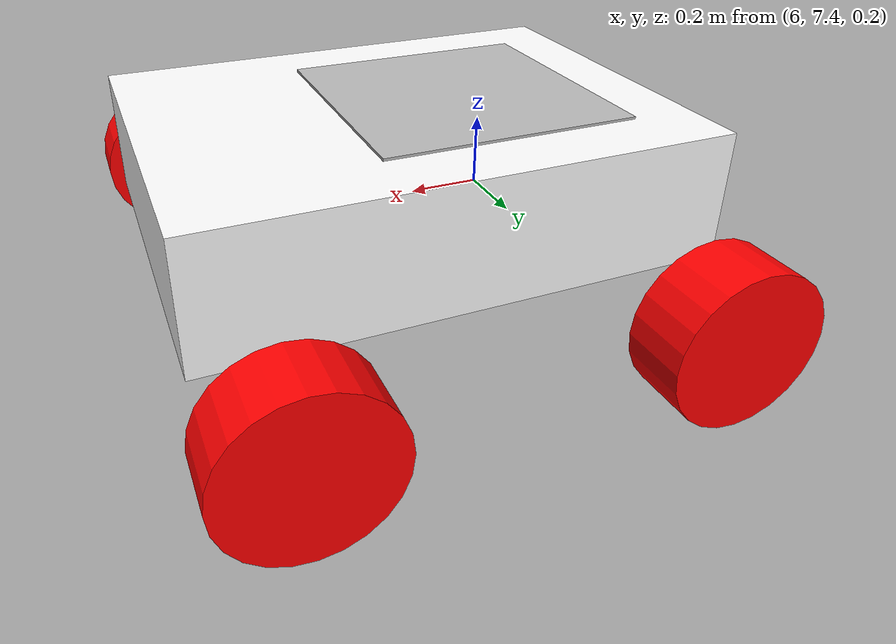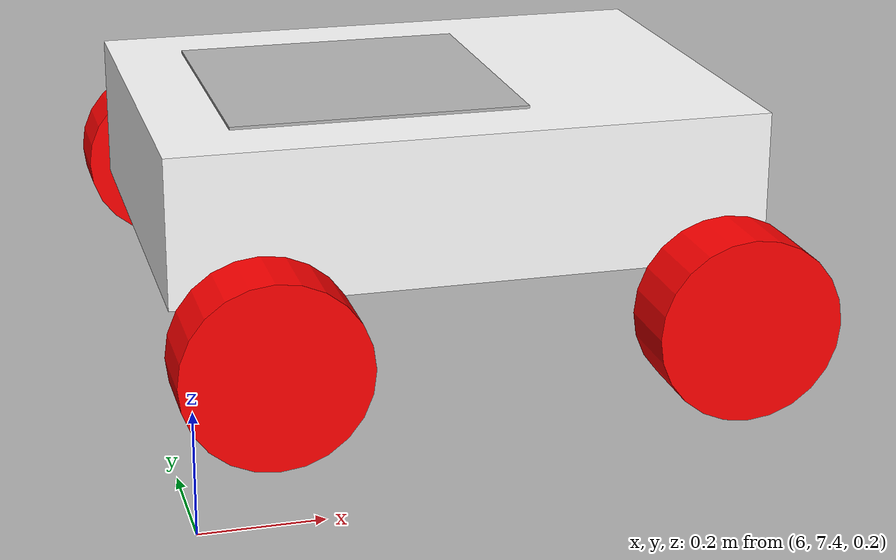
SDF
<?xml version="1.0" ?>
<sdf version="1.9">
  <model name="vehicle_blue" canonical_link="chassis">
    <pose>6.0 8.0 0.2 0 0 0</pose>

    <plugin filename="gz-sim-diff-drive-system" name="gz::sim::systems::DiffDrive">
      <left_joint>rear_left_wheel_joint</left_joint>
      <right_joint>rear_right_wheel_joint</right_joint>
      <wheel_separation>1.125</wheel_separation>
      <wheel_radius>0.15</wheel_radius>
      <odom_publish_frequency>1</odom_publish_frequency>
      <topic>cmd_vel</topic>
      <odom_topic>/odom</odom_topic>
    </plugin>
    <!-- Move Forward (W) -->
<plugin filename="gz-sim-triggered-publisher-system"
        name="gz::sim::systems::TriggeredPublisher">
    <input type="gz.msgs.Int32" topic="/keyboard/keypress">
        <match field="data">87</match>
    </input>
    <output type="gz.msgs.Twist" topic="/cmd_vel">
        linear: {x: 1.2}, angular: {z: 0.0}
    </output>
</plugin>

<!-- Move Backward (S) -->
<plugin filename="gz-sim-triggered-publisher-system"
        name="gz::sim::systems::TriggeredPublisher">
    <input type="gz.msgs.Int32" topic="/keyboard/keypress">
        <match field="data">83</match>
    </input>
    <output type="gz.msgs.Twist" topic="/cmd_vel">
        linear: {x: -1.2}, angular: {z: 0.0}
    </output>
</plugin>

<!-- Turn Left (A) -->
<plugin filename="gz-sim-triggered-publisher-system"
        name="gz::sim::systems::TriggeredPublisher">
    <input type="gz.msgs.Int32" topic="/keyboard/keypress">
        <match field="data">65</match>
    </input>
    <output type="gz.msgs.Twist" topic="/cmd_vel">
        linear: {x: 1.2}, angular: {z: -0.5}
    </output>
</plugin>

<!-- Turn Right (D) -->
<plugin filename="gz-sim-triggered-publisher-system"
        name="gz::sim::systems::TriggeredPublisher">
    <input type="gz.msgs.Int32" topic="/keyboard/keypress">
        <match field="data">68</match>
    </input>
    <output type="gz.msgs.Twist" topic="/cmd_vel">
        linear: {x: 1.2}, angular: {z: 0.5}
    </output>
</plugin>

<!-- Stop (X) -->
<plugin filename="gz-sim-triggered-publisher-system"
        name="gz::sim::systems::TriggeredPublisher">
    <input type="gz.msgs.Int32" topic="/keyboard/keypress">
        <match field="data">88</match>
    </input>
    <output type="gz.msgs.Twist" topic="/cmd_vel">
        linear: {x: 0.0}, angular: {z: 0.0}
    </output>
</plugin>
    <pose relative_to="__model__">0 0 0 0 0 0</pose>

    <link name="chassis">
      <pose relative_to="__model__">0.5 0 0.4 0 0 0</pose>
      <inertial>
        <mass>1.14395</mass>
        <inertia>
          <ixx>0.095329</ixx>
          <ixy>0</ixy>
          <ixz>0</ixz>
          <iyy>0.381317</iyy>
          <iyz>0</iyz>
          <izz>0.476646</izz>
        </inertia>
      </inertial>
      <visual name="visual">
        <geometry>
          <box>
            <size>1.0 0.75 0.25</size>
          </box>
        </geometry>
        <material>
          <ambient>1.0 1.0 1.0 1</ambient>
          <diffuse>1.0 1.0 1.0 1</diffuse>
          <specular>1.0 1.0 1.0 1</specular>
        </material>
      </visual>
      <collision name="collision">
        <geometry>
          <box>
            <size>1.0 0.75 0.25</size>
          </box>
        </geometry>
      </collision>
    </link>

    <link name="wheel_rear_right">
      <pose relative_to="chassis">-0.375 0.5625 -0.15 -1.5707 0 0</pose>
      <inertial>
        <mass>1</mass>
        <inertia>
          <ixx>0.043333</ixx>
          <ixy>0</ixy>
          <ixz>0</ixz>
          <iyy>0.043333</iyy>
          <iyz>0</iyz>
          <izz>0.08</izz>
        </inertia>
      </inertial>
      <visual name="visual">
        <geometry>
          <cylinder>
            <radius>0.15</radius>
            <length>0.125</length>
          </cylinder>
        </geometry>
        <material>
          <ambient>1.0 0.0 0.0 1</ambient>
          <diffuse>1.0 0.0 0.0 1</diffuse>
          <specular>1.0 0.0 0.0 1</specular>
        </material>
      </visual>
      <collision name="collision">
        <geometry>
          <cylinder>
            <radius>0.15</radius>
            <length>0.125</length>
          </cylinder>
        </geometry>
      </collision>
    </link>
    <link name="marker_link">
      <pose>0.125 0 0.525 0 1.5707 0</pose>
      <visual name="marker_visual">
        <geometry>
          <mesh>
            <uri>model://marker0/meshes/Marker0.dae</uri>
            <scale>1 1 1</scale>
          </mesh>
        </geometry>
        <pose>0 0 0 0 0 0</pose>
      </visual>
    </link>
    <link name="wheel_rear_left">
      <pose relative_to="chassis">-0.375 -0.5625 -0.15 -1.5707 0 0</pose>
      <inertial>
        <mass>1</mass>
        <inertia>
          <ixx>0.043333</ixx>
          <ixy>0</ixy>
          <ixz>0</ixz>
          <iyy>0.043333</iyy>
          <iyz>0</iyz>
          <izz>0.08</izz>
        </inertia>
      </inertial>
      <visual name="visual">
        <geometry>
          <cylinder>
            <radius>0.15</radius>
            <length>0.125</length>
          </cylinder>
        </geometry>
        <material>
          <ambient>1.0 0.0 0.0 1</ambient>
          <diffuse>1.0 0.0 0.0 1</diffuse>
          <specular>1.0 0.0 0.0 1</specular>
        </material>
      </visual>
      <collision name="collision">
        <geometry>
          <cylinder>
            <radius>0.15</radius>
            <length>0.125</length>
          </cylinder>
        </geometry>
      </collision>
    </link>

    <frame name="caster_left_frame" attached_to="chassis">
      <pose>0.375 -0.5625 -0.15 0 0 0</pose>
    </frame>
    <frame name="caster_right_frame" attached_to="chassis">
      <pose>0.375 0.5625 -0.15 0 0 0</pose>
    </frame>

    <link name="caster_left">
      <pose relative_to="caster_left_frame"/>
      <inertial>
        <mass>1</mass>
        <inertia>
          <ixx>0.016</ixx>
          <ixy>0</ixy>
          <ixz>0</ixz>
          <iyy>0.016</iyy>
          <iyz>0</iyz>
          <izz>0.016</izz>
        </inertia>
      </inertial>
      <collision name="collision">
        <geometry>
          <sphere>
            <radius>0.15</radius>
          </sphere>
        </geometry>
      </collision>
    </link>

    <link name="caster_right">
      <pose relative_to="caster_right_frame"/>
      <inertial>
        <mass>1</mass>
        <inertia>
          <ixx>0.016</ixx>
          <ixy>0</ixy>
          <ixz>0</ixz>
          <iyy>0.016</iyy>
          <iyz>0</iyz>
          <izz>0.016</izz>
        </inertia>
      </inertial>
      <collision name="collision">
        <geometry>
          <sphere>
            <radius>0.15</radius>
          </sphere>
        </geometry>
      </collision>
    </link>

    <link name="front_left_wheel_visual">
      <pose relative_to="caster_left_frame">0 0 0 1.5707 0 0</pose>
      <visual name="visual">
        <geometry>
          <cylinder>
            <radius>0.15</radius>
            <length>0.125</length>
          </cylinder>
        </geometry>
        <material>
          <ambient>1.0 0.0 0.0 1</ambient>
          <diffuse>1.0 0.0 0.0 1</diffuse>
          <specular>1.0 0.0 0.0 1</specular>
        </material>
      </visual>
    </link>

    <link name="front_right_wheel_visual">
      <pose relative_to="caster_right_frame">0 0 0 1.5707 0 0</pose>
      <visual name="visual">
        <geometry>
          <cylinder>
            <radius>0.15</radius>
            <length>0.125</length>
          </cylinder>
        </geometry>
        <material>
          <ambient>1.0 0.0 0.0 1</ambient>
          <diffuse>1.0 0.0 0.0 1</diffuse>
          <specular>1.0 0.0 0.0 1</specular>
        </material>
      </visual>
    </link>

    <joint name="front_left_wheel_visual_joint" type="fixed">
      <parent>caster_left_frame</parent>
      <child>front_left_wheel_visual</child>
    </joint>
    <joint name="front_right_wheel_visual_joint" type="fixed">
      <parent>caster_right_frame</parent>
      <child>front_right_wheel_visual</child>
    </joint>
    <joint name="caster_left_joint" type="ball">
      <parent>chassis</parent>
      <child>caster_left</child>
    </joint>
    <joint name="caster_right_joint" type="ball">
      <parent>chassis</parent>
      <child>caster_right</child>
    </joint>
    <joint name="rear_right_wheel_joint" type="revolute">
      <pose relative_to="wheel_rear_right"/>
      <parent>chassis</parent>
      <child>wheel_rear_right</child>
      <axis>
        <xyz expressed_in="__model__">0 1 0</xyz>
        <limit>
          <lower>-1.79769e+308</lower>
          <upper>1.79769e+308</upper>
        </limit>
      </axis>
    </joint>
    <joint name="rear_left_wheel_joint" type="revolute">
      <pose relative_to="wheel_rear_left"/>
      <parent>chassis</parent>
      <child>wheel_rear_left</child>
      <axis>
        <xyz expressed_in="__model__">0 1 0</xyz>
        <limit>
          <lower>-1.79769e+308</lower>
          <upper>1.79769e+308</upper>
        </limit>
      </axis>
    </joint>
<joint name="marker_fixed" type="fixed">
      <parent>chassis</parent>
      <child>marker_link</child>
    </joint>
  </model>
</sdf>
